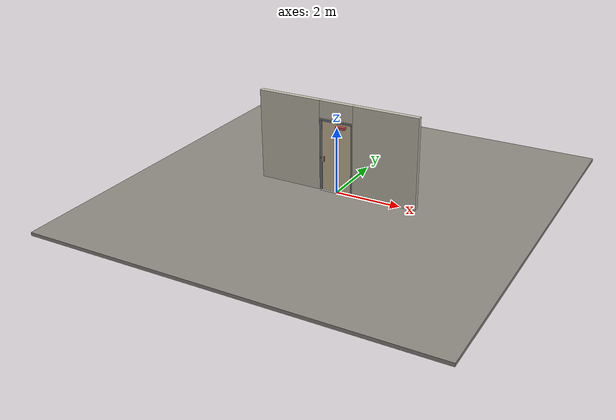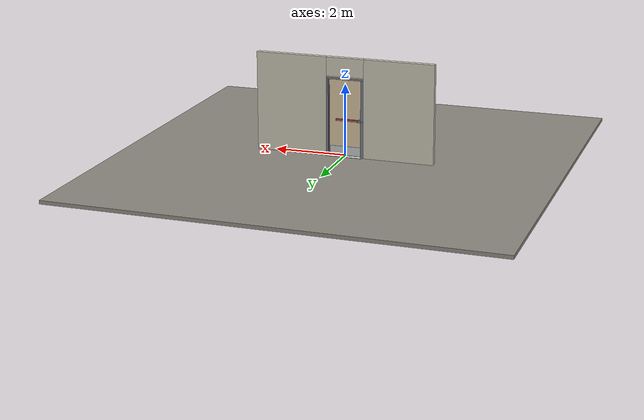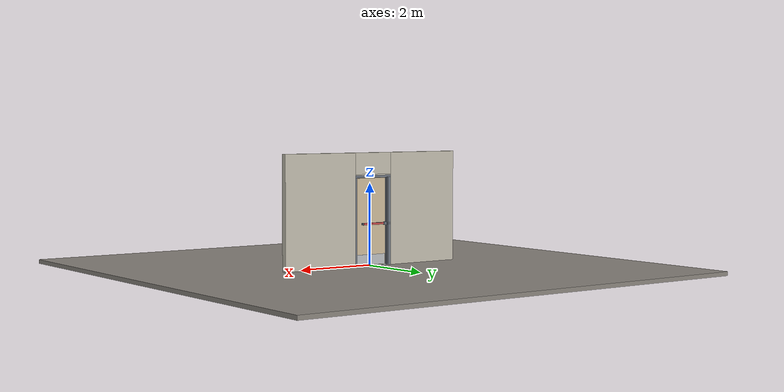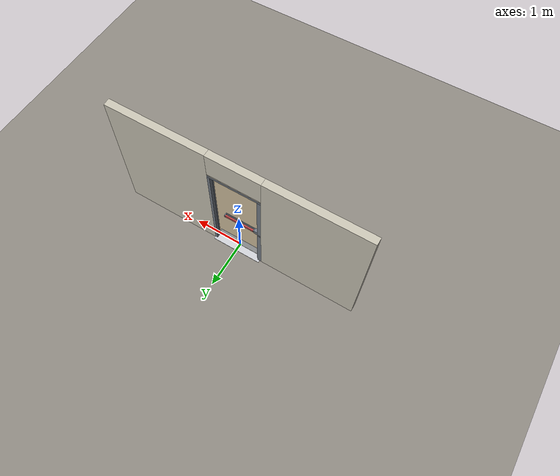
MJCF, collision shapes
<?xml version="1.0" ?>
<mujoco model="db0320_swing_single_simple">
  <compiler angle="radian" meshdir="../../hardware" texturedir="../../textures" autolimits="true" inertiafromgeom="false"/>
  <option timestep="0.002" integrator="implicitfast" cone="elliptic" impratio="10" noslip_iterations="3">
    <flag multiccd="enable"/>
  </option>
  <size memory="16M"/>
  <default>
    <geom condim="4" solref="0.005 1" solimp="0.95 0.99 0.001"/>
    <joint solreflimit="0.005 1" solimplimit="0.95 0.99 0.001"/>
    <tendon solreflimit="0.005 1"/>
    <equality solref="0.002 1"/>
  </default>
  <visual>
    <headlight ambient="0.4 0.4 0.4" diffuse="0.7 0.7 0.7" specular="0.2 0.2 0.2"/>
    <quality shadowsize="4096"/>
    <map znear="0.01" zfar="60"/>
  </visual>
  <asset>
    <mesh name="closer_body_fdc4667657" file="closer_body_fdc4667657.obj"/>
    <mesh name="hinge_e22b26c0c1" file="hinge_e22b26c0c1.obj"/>
    <mesh name="hinge_jamb_e1d088f8dc" file="hinge_jamb_e1d088f8dc.obj"/>
    <mesh name="pull_1e5d69a91a" file="pull_1e5d69a91a.obj"/>
    <mesh name="touchbar_pad_2729a067b4" file="touchbar_pad_2729a067b4.obj"/>
    <material name="mat_floor" rgba="0.55 0.53 0.5 1" specular="0.2" shininess="0.15" reflectance="0"/>
    <material name="mat_wall" rgba="0.78 0.76 0.7 1" specular="0.2" shininess="0.1" reflectance="0"/>
    <material name="mat_leaf" rgba="0.82 0.75 0.62 1" specular="0.23" shininess="0.35" reflectance="0.02"/>
    <material name="mat_hinge" rgba="0.65 0.66 0.68 1" specular="0.74" shininess="0.5" reflectance="0.36"/>
    <material name="mat_op_steel_painted" rgba="0.45 0.48 0.52 1" specular="0.32" shininess="0.6" reflectance="0.08"/>
    <material name="mat_op_stainless" rgba="0.75 0.76 0.77 1" specular="0.8" shininess="0.65" reflectance="0.4"/>
    <material name="mat_bolt" rgba="0.75 0.76 0.77 1" specular="0.8" shininess="0.65" reflectance="0.4"/>
    <material name="mat_frame" rgba="0.45 0.48 0.52 1" specular="0.32" shininess="0.6" reflectance="0.08"/>
    <material name="mat_seal" rgba="0.1 0.1 0.1 1" specular="0.2" shininess="0.1" reflectance="0"/>
    <material name="mat_threshold" rgba="0.8 0.81 0.83 1" specular="0.8" shininess="0.6" reflectance="0.4"/>
    <material name="mat_closer" rgba="0.22 0.17 0.13 1" specular="0.8" shininess="0.6" reflectance="0.4"/>
    <material name="mat_kick" rgba="0.75 0.76 0.77 1" specular="0.8" shininess="0.65" reflectance="0.4"/>
    <material name="mat_sign" rgba="0.75 0.76 0.77 1" specular="0.8" shininess="0.65" reflectance="0.4"/>
    <texture name="skybox" type="skybox" builtin="gradient" rgb1="0.6 0.7 0.85" rgb2="0.9 0.92 0.95" width="256" height="256"/>
  </asset>
  <worldbody>
    <light name="sun" pos="1.5 -2.5 4" dir="-0.3 0.5 -0.8" directional="true" diffuse="0.8 0.8 0.8" specular="0.3 0.3 0.3" castshadow="true"/>
    <light name="fill" pos="-1.5 2.5 3" dir="0.3 -0.5 -0.7" directional="true" diffuse="0.35 0.35 0.4" castshadow="false"/>
    <camera name="robot_view" pos="0 -2.594313 1.812087" xyaxes="1 0 0 0 0.26963 0.962964" fovy="52"/>
    <camera name="far_view" pos="0 2.681312 1.812087" xyaxes="-1 0 0 0 -0.26963 0.962964" fovy="52"/>
    <camera name="iso" pos="-2.004737 -2.172262 2.234138" xyaxes="0.741536 -0.670913 0 0.242917 0.268487 0.932151" fovy="46"/>
    <camera name="detail_handle" pos="-0.1865 -0.882 1.296" xyaxes="0.97561 0.219512 0 -0.070934 0.315262 0.94635" fovy="38"/>
    <geom name="floor" type="box" size="6 6 0.05" pos="0 0 -0.05" material="mat_floor" group="0" contype="1" conaffinity="1" friction="0.8 0.005 0.0001" density="2400"/>
    <geom name="wall_left" type="box" size="0.97975 0.0725 1.3735" pos="-1.52025 0.0435 1.3735" material="mat_wall" group="0" contype="1" conaffinity="1" friction="0.6 0.005 0.0001" density="800"/>
    <geom name="wall_right" type="box" size="0.99475 0.0725 1.3735" pos="1.50525 0.0435 1.3735" material="mat_wall" group="0" contype="1" conaffinity="1" friction="0.6 0.005 0.0001" density="800"/>
    <geom name="wall_header" type="box" size="0.5255 0.0725 0.26" pos="-0.015 0.0435 2.487" material="mat_wall" group="0" contype="1" conaffinity="1" friction="0.6 0.005 0.0001" density="800"/>
    <geom name="hinge_0_jamb" type="mesh" mesh="hinge_jamb_e1d088f8dc" pos="0.4575 -0.029 0.259" quat="0 0 1 0" material="mat_hinge" group="1" contype="0" conaffinity="0" density="7850"/>
    <geom name="hinge_1_jamb" type="mesh" mesh="hinge_jamb_e1d088f8dc" pos="0.4575 -0.029 0.827" quat="0 0 1 0" material="mat_hinge" group="1" contype="0" conaffinity="0" density="7850"/>
    <geom name="hinge_2_jamb" type="mesh" mesh="hinge_jamb_e1d088f8dc" pos="0.4575 -0.029 1.395" quat="0 0 1 0" material="mat_hinge" group="1" contype="0" conaffinity="0" density="7850"/>
    <geom name="hinge_3_jamb" type="mesh" mesh="hinge_jamb_e1d088f8dc" pos="0.4575 -0.029 1.963" quat="0 0 1 0" material="mat_hinge" group="1" contype="0" conaffinity="0" density="7850"/>
    <geom name="jamb_hinge" type="box" size="0.025 0.0725 1.0735" pos="0.4855 0.0435 1.0735" material="mat_frame" group="0" contype="1" conaffinity="1" friction="0.6 0.005 0.0001" density="300"/>
    <geom name="strike_1016_wall_n" type="box" size="0.04 0.0305 0.02" pos="-0.5005 0.0855 1.016" material="mat_frame" group="0" contype="1" conaffinity="1" friction="0.6 0.005 0.0001" density="300"/>
    <geom name="strike_1016_wall_p" type="box" size="0.04 0.008 0.02" pos="-0.5005 0.025 1.016" material="mat_frame" group="0" contype="1" conaffinity="1" friction="0.6 0.005 0.0001" density="300"/>
    <geom name="strike_1016_ramp" type="box" size="0.04 0.034482 0.02" pos="-0.508781 -0.0044 1.016" quat="0.989198 0 0 -0.146587" material="mat_frame" group="0" contype="1" conaffinity="1" friction="0.12 0.005 0.0001" density="300"/>
    <geom name="strike_1016_back" type="box" size="0.0285 0.011 0.02" pos="-0.512 0.044 1.016" material="mat_frame" group="0" contype="1" conaffinity="1" friction="0.6 0.005 0.0001" density="300"/>
    <geom name="jamb_strike_0" type="box" size="0.04 0.0725 0.498" pos="-0.5005 0.0435 0.498" material="mat_frame" group="0" contype="1" conaffinity="1" friction="0.6 0.005 0.0001" density="300"/>
    <geom name="jamb_strike_1" type="box" size="0.04 0.0725 0.5555" pos="-0.5005 0.0435 1.5915" material="mat_frame" group="0" contype="1" conaffinity="1" friction="0.6 0.005 0.0001" density="300"/>
    <geom name="jamb_head" type="box" size="0.5255 0.0725 0.025" pos="-0.015 0.0435 2.172" material="mat_frame" group="0" contype="1" conaffinity="1" friction="0.6 0.005 0.0001" density="300"/>
    <geom name="head_stud" type="box" size="0.5255 0.0725 0.015" pos="-0.015 0.0435 2.212" material="mat_wall" group="0" contype="1" conaffinity="1" friction="0.6 0.005 0.0001" density="500"/>
    <geom name="stop_hinge" type="box" size="0.0055 0.016 1.0735" pos="0.455 0.0385 1.0735" material="mat_frame" group="0" contype="1" conaffinity="1" friction="0.6 0.005 0.0001" density="300"/>
    <geom name="stop_strike" type="box" size="0.0055 0.016 0.48425" pos="-0.455 0.0385 0.48425" material="mat_frame" group="0" contype="1" conaffinity="1" friction="0.6 0.005 0.0001" density="300"/>
    <geom name="stop_strike_1" type="box" size="0.0055 0.016 0.54175" pos="-0.455 0.0385 1.60525" material="mat_frame" group="0" contype="1" conaffinity="1" friction="0.6 0.005 0.0001" density="300"/>
    <geom name="stop_head" type="box" size="0.4605 0.016 0.0055" pos="0 0.0385 2.1415" material="mat_frame" group="0" contype="1" conaffinity="1" friction="0.6 0.005 0.0001" density="300"/>
    <geom name="seal_hinge" type="box" size="0.004 0.002 1.0735" pos="0.4575 0.024 1.0735" material="mat_seal" group="1" contype="0" conaffinity="0" density="1100"/>
    <geom name="seal_strike" type="box" size="0.004 0.002 0.48425" pos="-0.4575 0.024 0.48425" material="mat_seal" group="1" contype="0" conaffinity="0" density="1100"/>
    <geom name="seal_strike_1" type="box" size="0.004 0.002 0.54175" pos="-0.4575 0.024 1.60525" material="mat_seal" group="1" contype="0" conaffinity="0" density="1100"/>
    <geom name="seal_head" type="box" size="0.4405 0.002 0.008" pos="0 0.024 2.135" material="mat_seal" group="1" contype="0" conaffinity="0" density="1100"/>
    <geom name="threshold" type="box" size="0.5105 0.1225 0.004" pos="0 0.0435 0.004" material="mat_threshold" group="0" contype="1" conaffinity="1" friction="0.6 0.005 0.0001" density="2700"/>
    <site name="approach_point" pos="0 -1.5 0" quat="1 0 0 0" size="0.05" rgba="0.2 0.9 0.2 0.5" group="4"/>
    <site name="goal_point" pos="0 1.5 0" quat="1 0 0 0" size="0.05" rgba="0.2 0.9 0.2 0.5" group="4"/>
    <site name="door_plane_center" pos="0 0 1.0735" quat="1 0 0 0" size="0.02" rgba="0.2 0.9 0.2 0.5" group="4"/>
    <body name="leaf" pos="0.4605 0 0">
      <inertial pos="-0.429384 -0.013584 1.246179" mass="54.524193" quat="0.518072 -0.516264 -0.468961 -0.495124" diaginertia="3.428641537 26.200901448 29.527796212"/>
      <joint name="leaf_hinge" type="hinge" axis="0 0 1" pos="-0.003 -0.029 0" limited="true" range="0 1.745329" solreflimit="0.02 1" damping="12.268966" frictionloss="2.56146" stiffness="12.254931" springref="-1.689116" armature="0.02"/>
      <geom name="leaf_slab" type="box" size="0.457 0.022 1.067" pos="-0.46 0 1.076" material="mat_leaf" group="0" contype="1" conaffinity="1" friction="0.4 0.005 0.0001" density="1"/>
      <geom name="hinge_0" type="mesh" mesh="hinge_e22b26c0c1" pos="-0.003 -0.029 0.259" quat="0 0 1 0" material="mat_hinge" group="1" contype="0" conaffinity="0" density="7850"/>
      <geom name="hinge_1" type="mesh" mesh="hinge_e22b26c0c1" pos="-0.003 -0.029 0.827" quat="0 0 1 0" material="mat_hinge" group="1" contype="0" conaffinity="0" density="7850"/>
      <geom name="hinge_2" type="mesh" mesh="hinge_e22b26c0c1" pos="-0.003 -0.029 1.395" quat="0 0 1 0" material="mat_hinge" group="1" contype="0" conaffinity="0" density="7850"/>
      <geom name="hinge_3" type="mesh" mesh="hinge_e22b26c0c1" pos="-0.003 -0.029 1.963" quat="0 0 1 0" material="mat_hinge" group="1" contype="0" conaffinity="0" density="7850"/>
      <geom name="leaf_exit_device_rail" type="box" size="0.31705 0.006 0.025" pos="-0.51995 0.028 1.016" material="mat_op_steel_painted" group="0" contype="1" conaffinity="1" friction="0.6 0.005 0.0001" density="3000"/>
      <geom name="leaf_exit_device_rail_end_n" type="box" size="0.01 0.0325 0.025" pos="-0.827 0.0545 1.016" material="mat_op_steel_painted" group="0" contype="1" conaffinity="1" friction="0.6 0.005 0.0001" density="3000"/>
      <geom name="leaf_exit_device_rail_end_p" type="box" size="0.01 0.0325 0.025" pos="-0.2129 0.0545 1.016" material="mat_op_steel_painted" group="0" contype="1" conaffinity="1" friction="0.6 0.005 0.0001" density="3000"/>
      <geom name="leaf_exit_device_case" type="box" size="0.034 0.034125 0.0375" pos="-0.871 0.056125 1.016" material="mat_op_steel_painted" group="0" contype="1" conaffinity="1" friction="0.6 0.005 0.0001" density="3000"/>
      <geom name="leaf_far_pull_n" type="mesh" mesh="pull_1e5d69a91a" pos="-0.827 -0.022 1.016" quat="0 0 -0.707107 0.707107" material="mat_op_stainless" group="1" contype="0" conaffinity="0" density="3000"/>
      <geom name="leaf_far_pull_col_n" type="capsule" size="0.0095 0.08" pos="-0.827 -0.082 1.016" material="mat_op_stainless" group="3" contype="1" conaffinity="1" rgba="0.8 0.3 0.3 0.25" friction="0.7 0.01 0.0001" density="3000"/>
      <geom name="closer_body" type="mesh" mesh="closer_body_fdc4667657" pos="-0.3 -0.022 2.054" quat="0 0 -0.707107 0.707107" material="mat_closer" group="1" contype="0" conaffinity="0" density="2000"/>
      <geom name="closer_body_col" type="box" size="0.145 0.05 0.035" pos="-0.3 -0.072 2.054" material="mat_closer" group="3" contype="1" conaffinity="1" rgba="0.8 0.3 0.3 0.25" friction="0.6 0.005 0.0001" density="2000"/>
      <geom name="kick_plate_p" type="box" size="0.427 0.0008 0.125" pos="-0.46 0.0228 0.144" material="mat_kick" group="2" contype="0" conaffinity="0" density="7900"/>
      <site name="leaf_far_pull_grip_n" pos="-0.827 -0.082 1.016" quat="1 0 0 0" size="0.012" rgba="0.2 0.9 0.2 0.5" group="4"/>
      <site name="leaf_edge_mid" pos="-0.917 0 1.067" quat="1 0 0 0" size="0.02" rgba="0.2 0.9 0.2 0.5" group="4"/>
      <body name="leaf_exit_device" pos="-0.51995 0.022 1.016">
        <inertial pos="0 0.05 0" mass="4.76361" quat="0 0 0.707107 0.707107" diaginertia="0.00116113 0.137653089 0.138099678"/>
        <joint name="leaf_exit_device_slide" type="slide" axis="0 -1 0" limited="true" range="0 0.016" damping="221.666642" frictionloss="0.5" stiffness="2500" springref="-0.018" armature="0.15"/>
        <geom name="leaf_exit_device_pad" type="mesh" mesh="touchbar_pad_2729a067b4" pos="0 0 0" quat="0 0 0.707107 0.707107" material="mat_op_steel_painted" group="1" contype="0" conaffinity="0" density="3000"/>
        <geom name="leaf_exit_device_pad_col" type="box" size="0.29405 0.015 0.0225" pos="0 0.05 0" material="mat_op_steel_painted" group="3" contype="1" conaffinity="1" rgba="0.8 0.3 0.3 0.25" friction="0.8 0.01 0.0001" density="3000"/>
        <site name="leaf_exit_device_push" pos="0 0.065 0" quat="1 0 0 0" size="0.015" rgba="0.2 0.9 0.2 0.5" group="4"/>
      </body>
      <body name="leaf_latch_bolt" pos="-0.917 0.044 1.016">
        <inertial pos="0.0055 0 0" mass="0.102826" quat="0.92388 0.382683 0 0" diaginertia="0.000004365 0.000018287 0.000018287"/>
        <joint name="leaf_latch_bolt_slide" type="slide" axis="1 0 0" limited="true" range="0 0.019" damping="2" frictionloss="0.3" stiffness="800" springref="-0.01" armature="0.1"/>
        <geom name="leaf_latch_bolt_capsule" type="capsule" size="0.0095 0.015" pos="0.0055 0 0" quat="0.707107 0 -0.707107 0" material="mat_bolt" group="0" contype="1" conaffinity="1" friction="0.2 0.005 0.0001" density="8500"/>
      </body>
    </body>
  </worldbody>
  <tendon>
    <fixed name="leaf_latch_bolt_coupling" limited="true" range="0 10">
      <joint joint="leaf_latch_bolt_slide" coef="1"/>
      <joint joint="leaf_exit_device_slide" coef="-1.583333"/>
    </fixed>
  </tendon>
  <sensor>
    <jointpos name="leaf_hinge_pos" joint="leaf_hinge"/>
    <jointvel name="leaf_hinge_vel" joint="leaf_hinge"/>
    <jointpos name="leaf_exit_device_slide_pos" joint="leaf_exit_device_slide"/>
    <jointvel name="leaf_exit_device_slide_vel" joint="leaf_exit_device_slide"/>
    <jointpos name="leaf_latch_bolt_slide_pos" joint="leaf_latch_bolt_slide"/>
    <jointvel name="leaf_latch_bolt_slide_vel" joint="leaf_latch_bolt_slide"/>
  </sensor>
</mujoco>
